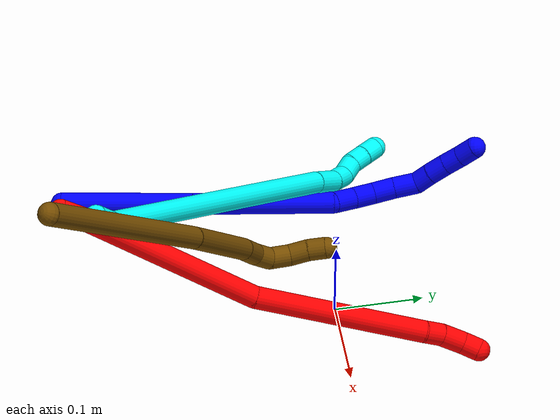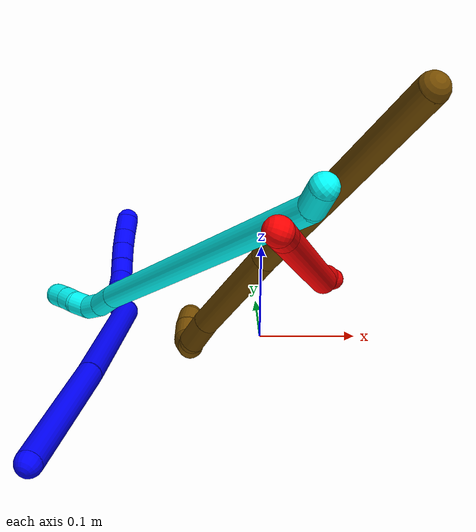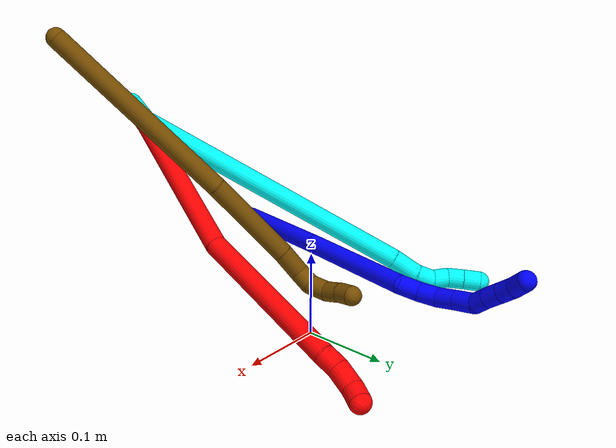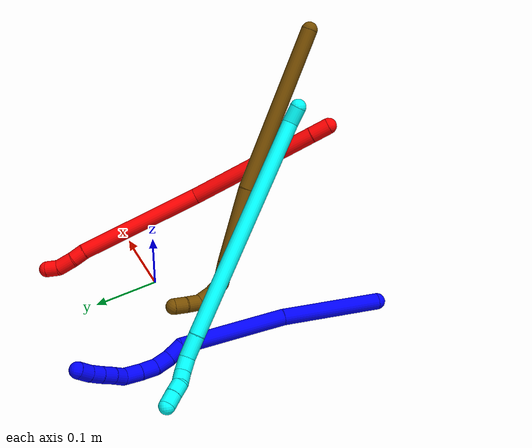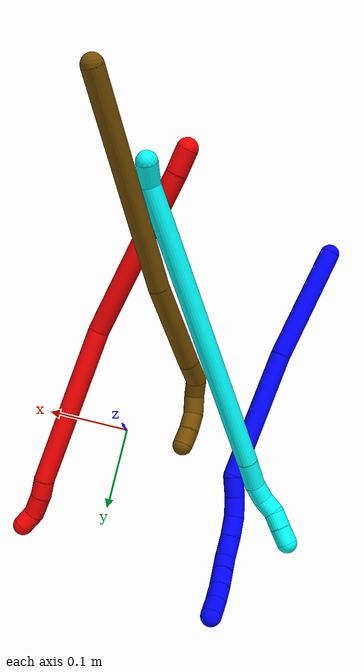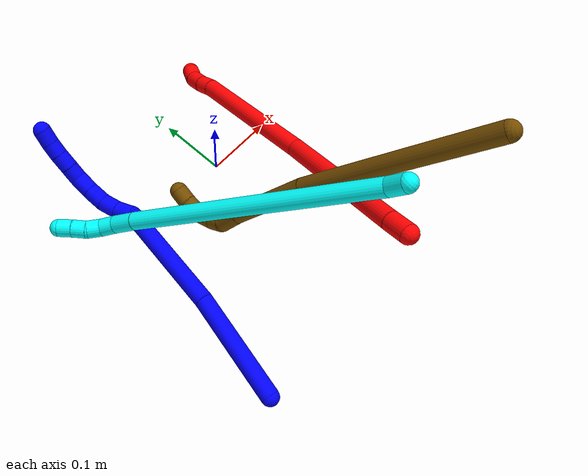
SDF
<sdf version="1.7">
 <world name="default">
  <model name="1">
   <static>0</static>
   <link name="1">
    <collision name="collision-cylinder-e_1_1_4">
     <pose>-0.004392 0.025445 -0.071295 -2.79879 -0.057948 0.331778</pose>
     <geometry><cylinder><radius>0.0125</radius><length>0.151654</length></cylinder></geometry>
     <surface>
      <friction><ode><mu>1.16</mu><mu2>1.16</mu2><slip1>0</slip1><slip2>0</slip2></ode></friction>
      <contact><ode><kp>1e+06</kp><kd>1</kd><max_vel>0</max_vel><min_depth>0.001</min_depth></ode></contact>
     </surface>
    </collision>
    <visual name="visual-cylinder-e_1_1_4">
     <pose>-0.004392 0.025445 -0.071295 -2.79879 -0.057948 0.331778</pose>
     <geometry><cylinder><radius>0.0125</radius><length>0.151654</length></cylinder></geometry>
     <material><ambient>0 0 1 1</ambient></material>
    </visual>
    <collision name="collision-cylinder-e_2_4_5">
     <pose>-0.011287 0.085624 -0.215788 -2.69853 -0.030896 0.136972</pose>
     <geometry><cylinder><radius>0.0125</radius><length>0.162118</length></cylinder></geometry>
     <surface>
      <friction><ode><mu>1.16</mu><mu2>1.16</mu2><slip1>0</slip1><slip2>0</slip2></ode></friction>
      <contact><ode><kp>1e+06</kp><kd>1</kd><max_vel>0</max_vel><min_depth>0.001</min_depth></ode></contact>
     </surface>
    </collision>
    <visual name="visual-cylinder-e_2_4_5">
     <pose>-0.011287 0.085624 -0.215788 -2.69853 -0.030896 0.136972</pose>
     <geometry><cylinder><radius>0.0125</radius><length>0.162118</length></cylinder></geometry>
     <material><ambient>0 0 1 1</ambient></material>
    </visual>
    <collision name="collision-cylinder-e_3_5_6">
     <pose>-0.010954 0.130009 -0.297068 -2.26803 0.221698 -0.468091</pose>
     <geometry><cylinder><radius>0.0125</radius><length>0.025808</length></cylinder></geometry>
     <surface>
      <friction><ode><mu>1.16</mu><mu2>1.16</mu2><slip1>0</slip1><slip2>0</slip2></ode></friction>
      <contact><ode><kp>1e+06</kp><kd>1</kd><max_vel>0</max_vel><min_depth>0.001</min_depth></ode></contact>
     </surface>
    </collision>
    <visual name="visual-cylinder-e_3_5_6">
     <pose>-0.010954 0.130009 -0.297068 -2.26803 0.221698 -0.468091</pose>
     <geometry><cylinder><radius>0.0125</radius><length>0.025808</length></cylinder></geometry>
     <material><ambient>0 0 1 1</ambient></material>
    </visual>
    <collision name="collision-cylinder-e_4_6_7">
     <pose>-0.005341 0.147247 -0.31463 -2.46657 0.224739 -0.622213</pose>
     <geometry><cylinder><radius>0.0125</radius><length>0.02491</length></cylinder></geometry>
     <surface>
      <friction><ode><mu>1.16</mu><mu2>1.16</mu2><slip1>0</slip1><slip2>0</slip2></ode></friction>
      <contact><ode><kp>1e+06</kp><kd>1</kd><max_vel>0</max_vel><min_depth>0.001</min_depth></ode></contact>
     </surface>
    </collision>
    <visual name="visual-cylinder-e_4_6_7">
     <pose>-0.005341 0.147247 -0.31463 -2.46657 0.224739 -0.622213</pose>
     <geometry><cylinder><radius>0.0125</radius><length>0.02491</length></cylinder></geometry>
     <material><ambient>0 0 1 1</ambient></material>
    </visual>
    <collision name="collision-cylinder-e_5_7_8">
     <pose>9.2e-05 0.159648 -0.335402 -2.7387 0.213161 -0.965146</pose>
     <geometry><cylinder><radius>0.0125</radius><length>0.02512</length></cylinder></geometry>
     <surface>
      <friction><ode><mu>1.16</mu><mu2>1.16</mu2><slip1>0</slip1><slip2>0</slip2></ode></friction>
      <contact><ode><kp>1e+06</kp><kd>1</kd><max_vel>0</max_vel><min_depth>0.001</min_depth></ode></contact>
     </surface>
    </collision>
    <visual name="visual-cylinder-e_5_7_8">
     <pose>9.2e-05 0.159648 -0.335402 -2.7387 0.213161 -0.965146</pose>
     <geometry><cylinder><radius>0.0125</radius><length>0.02512</length></cylinder></geometry>
     <material><ambient>0 0 1 1</ambient></material>
    </visual>
    <collision name="collision-cylinder-e_6_8_9">
     <pose>0.004913 0.169073 -0.359097 -2.78557 0.162071 -0.848026</pose>
     <geometry><cylinder><radius>0.0125</radius><length>0.026816</length></cylinder></geometry>
     <surface>
      <friction><ode><mu>1.16</mu><mu2>1.16</mu2><slip1>0</slip1><slip2>0</slip2></ode></friction>
      <contact><ode><kp>1e+06</kp><kd>1</kd><max_vel>0</max_vel><min_depth>0.001</min_depth></ode></contact>
     </surface>
    </collision>
    <visual name="visual-cylinder-e_6_8_9">
     <pose>0.004913 0.169073 -0.359097 -2.78557 0.162071 -0.848026</pose>
     <geometry><cylinder><radius>0.0125</radius><length>0.026816</length></cylinder></geometry>
     <material><ambient>0 0 1 1</ambient></material>
    </visual>
    <collision name="collision-cylinder-e_7_9_10">
     <pose>0.011442 0.172761 -0.38059 3.04029 0.445739 2.70146</pose>
     <geometry><cylinder><radius>0.0125</radius><length>0.020253</length></cylinder></geometry>
     <surface>
      <friction><ode><mu>1.16</mu><mu2>1.16</mu2><slip1>0</slip1><slip2>0</slip2></ode></friction>
      <contact><ode><kp>1e+06</kp><kd>1</kd><max_vel>0</max_vel><min_depth>0.001</min_depth></ode></contact>
     </surface>
    </collision>
    <visual name="visual-cylinder-e_7_9_10">
     <pose>0.011442 0.172761 -0.38059 3.04029 0.445739 2.70146</pose>
     <geometry><cylinder><radius>0.0125</radius><length>0.020253</length></cylinder></geometry>
     <material><ambient>0 0 1 1</ambient></material>
    </visual>
    <collision name="collision-cylinder-e_8_10_11">
     <pose>0.020238 0.171413 -0.399817 3.09984 0.411719 2.94227</pose>
     <geometry><cylinder><radius>0.0125</radius><length>0.022143</length></cylinder></geometry>
     <surface>
      <friction><ode><mu>1.16</mu><mu2>1.16</mu2><slip1>0</slip1><slip2>0</slip2></ode></friction>
      <contact><ode><kp>1e+06</kp><kd>1</kd><max_vel>0</max_vel><min_depth>0.001</min_depth></ode></contact>
     </surface>
    </collision>
    <visual name="visual-cylinder-e_8_10_11">
     <pose>0.020238 0.171413 -0.399817 3.09984 0.411719 2.94227</pose>
     <geometry><cylinder><radius>0.0125</radius><length>0.022143</length></cylinder></geometry>
     <material><ambient>0 0 1 1</ambient></material>
    </visual>
    <collision name="collision-cylinder-e_9_11_12">
     <pose>0.028309 0.17019 -0.419352 3.05667 0.368345 2.6931</pose>
     <geometry><cylinder><radius>0.0125</radius><length>0.020217</length></cylinder></geometry>
     <surface>
      <friction><ode><mu>1.16</mu><mu2>1.16</mu2><slip1>0</slip1><slip2>0</slip2></ode></friction>
      <contact><ode><kp>1e+06</kp><kd>1</kd><max_vel>0</max_vel><min_depth>0.001</min_depth></ode></contact>
     </surface>
    </collision>
    <visual name="visual-cylinder-e_9_11_12">
     <pose>0.028309 0.17019 -0.419352 3.05667 0.368345 2.6931</pose>
     <geometry><cylinder><radius>0.0125</radius><length>0.020217</length></cylinder></geometry>
     <material><ambient>0 0 1 1</ambient></material>
    </visual>
    <collision name="collision-cylinder-e_10_12_2">
     <pose>0.03566 0.167319 -0.438328 2.92866 0.361967 2.08441</pose>
     <geometry><cylinder><radius>0.0125</radius><length>0.02096</length></cylinder></geometry>
     <surface>
      <friction><ode><mu>1.16</mu><mu2>1.16</mu2><slip1>0</slip1><slip2>0</slip2></ode></friction>
      <contact><ode><kp>1e+06</kp><kd>1</kd><max_vel>0</max_vel><min_depth>0.001</min_depth></ode></contact>
     </surface>
    </collision>
    <visual name="visual-cylinder-e_10_12_2">
     <pose>0.03566 0.167319 -0.438328 2.92866 0.361967 2.08441</pose>
     <geometry><cylinder><radius>0.0125</radius><length>0.02096</length></cylinder></geometry>
     <material><ambient>0 0 1 1</ambient></material>
    </visual>
    <collision name="collision-sphere-2">
     <pose>0.039371 0.165247 -0.447908 0 -0 0</pose>
     <geometry><sphere><radius>0.0125</radius></sphere></geometry>
     <surface>
      <friction><ode><mu>1.16</mu><mu2>1.16</mu2><slip1>0</slip1><slip2>0</slip2></ode></friction>
      <contact><ode><kp>1e+06</kp><kd>1</kd><max_vel>0</max_vel><min_depth>0.001</min_depth></ode></contact>
     </surface>
    </collision>
    <visual name="visual-sphere-2">
     <pose>0.039371 0.165247 -0.447908 0 -0 0</pose>
     <geometry><sphere><radius>0.0125</radius></sphere></geometry>
     <material><ambient>0 0 1 1</ambient></material>
    </visual>
    <collision name="collision-sphere-12">
     <pose>0.031949 0.16939 -0.428748 0 -0 0</pose>
     <geometry><sphere><radius>0.0125</radius></sphere></geometry>
     <surface>
      <friction><ode><mu>1.16</mu><mu2>1.16</mu2><slip1>0</slip1><slip2>0</slip2></ode></friction>
      <contact><ode><kp>1e+06</kp><kd>1</kd><max_vel>0</max_vel><min_depth>0.001</min_depth></ode></contact>
     </surface>
    </collision>
    <visual name="visual-sphere-12">
     <pose>0.031949 0.16939 -0.428748 0 -0 0</pose>
     <geometry><sphere><radius>0.0125</radius></sphere></geometry>
     <material><ambient>0 0 1 1</ambient></material>
    </visual>
    <collision name="collision-sphere-11">
     <pose>0.024669 0.17099 -0.409955 0 -0 0</pose>
     <geometry><sphere><radius>0.0125</radius></sphere></geometry>
     <surface>
      <friction><ode><mu>1.16</mu><mu2>1.16</mu2><slip1>0</slip1><slip2>0</slip2></ode></friction>
      <contact><ode><kp>1e+06</kp><kd>1</kd><max_vel>0</max_vel><min_depth>0.001</min_depth></ode></contact>
     </surface>
    </collision>
    <visual name="visual-sphere-11">
     <pose>0.024669 0.17099 -0.409955 0 -0 0</pose>
     <geometry><sphere><radius>0.0125</radius></sphere></geometry>
     <material><ambient>0 0 1 1</ambient></material>
    </visual>
    <collision name="collision-sphere-10">
     <pose>0.015808 0.171837 -0.38968 0 -0 0</pose>
     <geometry><sphere><radius>0.0125</radius></sphere></geometry>
     <surface>
      <friction><ode><mu>1.16</mu><mu2>1.16</mu2><slip1>0</slip1><slip2>0</slip2></ode></friction>
      <contact><ode><kp>1e+06</kp><kd>1</kd><max_vel>0</max_vel><min_depth>0.001</min_depth></ode></contact>
     </surface>
    </collision>
    <visual name="visual-sphere-10">
     <pose>0.015808 0.171837 -0.38968 0 -0 0</pose>
     <geometry><sphere><radius>0.0125</radius></sphere></geometry>
     <material><ambient>0 0 1 1</ambient></material>
    </visual>
    <collision name="collision-sphere-9">
     <pose>0.007076 0.173685 -0.3715 0 -0 0</pose>
     <geometry><sphere><radius>0.0125</radius></sphere></geometry>
     <surface>
      <friction><ode><mu>1.16</mu><mu2>1.16</mu2><slip1>0</slip1><slip2>0</slip2></ode></friction>
      <contact><ode><kp>1e+06</kp><kd>1</kd><max_vel>0</max_vel><min_depth>0.001</min_depth></ode></contact>
     </surface>
    </collision>
    <visual name="visual-sphere-9">
     <pose>0.007076 0.173685 -0.3715 0 -0 0</pose>
     <geometry><sphere><radius>0.0125</radius></sphere></geometry>
     <material><ambient>0 0 1 1</ambient></material>
    </visual>
    <collision name="collision-sphere-4">
     <pose>-0.008783 0.05089 -0.14259 0 -0 0</pose>
     <geometry><sphere><radius>0.0125</radius></sphere></geometry>
     <surface>
      <friction><ode><mu>1.16</mu><mu2>1.16</mu2><slip1>0</slip1><slip2>0</slip2></ode></friction>
      <contact><ode><kp>1e+06</kp><kd>1</kd><max_vel>0</max_vel><min_depth>0.001</min_depth></ode></contact>
     </surface>
    </collision>
    <visual name="visual-sphere-4">
     <pose>-0.008783 0.05089 -0.14259 0 -0 0</pose>
     <geometry><sphere><radius>0.0125</radius></sphere></geometry>
     <material><ambient>0 0 1 1</ambient></material>
    </visual>
    <collision name="collision-sphere-1">
     <geometry><sphere><radius>0.0125</radius></sphere></geometry>
     <surface>
      <friction><ode><mu>1.16</mu><mu2>1.16</mu2><slip1>0</slip1><slip2>0</slip2></ode></friction>
      <contact><ode><kp>1e+06</kp><kd>1</kd><max_vel>0</max_vel><min_depth>0.001</min_depth></ode></contact>
     </surface>
    </collision>
    <visual name="visual-sphere-1">
     <geometry><sphere><radius>0.0125</radius></sphere></geometry>
     <material><ambient>0 0 1 1</ambient></material>
    </visual>
    <collision name="collision-sphere-8">
     <pose>0.002749 0.164461 -0.346695 0 -0 0</pose>
     <geometry><sphere><radius>0.0125</radius></sphere></geometry>
     <surface>
      <friction><ode><mu>1.16</mu><mu2>1.16</mu2><slip1>0</slip1><slip2>0</slip2></ode></friction>
      <contact><ode><kp>1e+06</kp><kd>1</kd><max_vel>0</max_vel><min_depth>0.001</min_depth></ode></contact>
     </surface>
    </collision>
    <visual name="visual-sphere-8">
     <pose>0.002749 0.164461 -0.346695 0 -0 0</pose>
     <geometry><sphere><radius>0.0125</radius></sphere></geometry>
     <material><ambient>0 0 1 1</ambient></material>
    </visual>
    <collision name="collision-sphere-5">
     <pose>-0.013791 0.120358 -0.288985 0 -0 0</pose>
     <geometry><sphere><radius>0.0125</radius></sphere></geometry>
     <surface>
      <friction><ode><mu>1.16</mu><mu2>1.16</mu2><slip1>0</slip1><slip2>0</slip2></ode></friction>
      <contact><ode><kp>1e+06</kp><kd>1</kd><max_vel>0</max_vel><min_depth>0.001</min_depth></ode></contact>
     </surface>
    </collision>
    <visual name="visual-sphere-5">
     <pose>-0.013791 0.120358 -0.288985 0 -0 0</pose>
     <geometry><sphere><radius>0.0125</radius></sphere></geometry>
     <material><ambient>0 0 1 1</ambient></material>
    </visual>
    <collision name="collision-sphere-6">
     <pose>-0.008116 0.139659 -0.305151 0 -0 0</pose>
     <geometry><sphere><radius>0.0125</radius></sphere></geometry>
     <surface>
      <friction><ode><mu>1.16</mu><mu2>1.16</mu2><slip1>0</slip1><slip2>0</slip2></ode></friction>
      <contact><ode><kp>1e+06</kp><kd>1</kd><max_vel>0</max_vel><min_depth>0.001</min_depth></ode></contact>
     </surface>
    </collision>
    <visual name="visual-sphere-6">
     <pose>-0.008116 0.139659 -0.305151 0 -0 0</pose>
     <geometry><sphere><radius>0.0125</radius></sphere></geometry>
     <material><ambient>0 0 1 1</ambient></material>
    </visual>
    <collision name="collision-sphere-7">
     <pose>-0.002565 0.154834 -0.324109 0 -0 0</pose>
     <geometry><sphere><radius>0.0125</radius></sphere></geometry>
     <surface>
      <friction><ode><mu>1.16</mu><mu2>1.16</mu2><slip1>0</slip1><slip2>0</slip2></ode></friction>
      <contact><ode><kp>1e+06</kp><kd>1</kd><max_vel>0</max_vel><min_depth>0.001</min_depth></ode></contact>
     </surface>
    </collision>
    <visual name="visual-sphere-7">
     <pose>-0.002565 0.154834 -0.324109 0 -0 0</pose>
     <geometry><sphere><radius>0.0125</radius></sphere></geometry>
     <material><ambient>0 0 1 1</ambient></material>
    </visual>
    <inertial>
     <pose>-0.001556 0.0951 -0.227162 0 -0 0</pose>
     <mass>0.5</mass>
     <inertia>
      <ixx>0.000785</ixx>
      <ixy>0</ixy>
      <ixz>0</ixz>
      <iyy>-0.000429</iyy>
      <iyz>0</iyz>
      <izz>-0.00027</izz>
     </inertia>
    </inertial>
   </link>
   <pose>-0.199631 -0.283556 0.011497 -2.02134 -0.601897 3.02966</pose>
  </model>
  <model name="2">
   <static>0</static>
   <link name="2">
    <collision name="collision-cylinder-e_1_1_4">
     <pose>0.000365 0.013297 -0.006179 -2.00579 0.024873 -0.038983</pose>
     <geometry><cylinder><radius>0.0125</radius><length>0.029335</length></cylinder></geometry>
     <surface>
      <friction><ode><mu>1.16</mu><mu2>1.16</mu2><slip1>0</slip1><slip2>0</slip2></ode></friction>
      <contact><ode><kp>1e+06</kp><kd>1</kd><max_vel>0</max_vel><min_depth>0.001</min_depth></ode></contact>
     </surface>
    </collision>
    <visual name="visual-cylinder-e_1_1_4">
     <pose>0.000365 0.013297 -0.006179 -2.00579 0.024873 -0.038983</pose>
     <geometry><cylinder><radius>0.0125</radius><length>0.029335</length></cylinder></geometry>
     <material><ambient>1 0 0 1</ambient></material>
    </visual>
    <collision name="collision-cylinder-e_2_4_5">
     <pose>-0.00108 0.116728 -0.0621 -2.07507 -0.017579 0.029779</pose>
     <geometry><cylinder><radius>0.0125</radius><length>0.205928</length></cylinder></geometry>
     <surface>
      <friction><ode><mu>1.16</mu><mu2>1.16</mu2><slip1>0</slip1><slip2>0</slip2></ode></friction>
      <contact><ode><kp>1e+06</kp><kd>1</kd><max_vel>0</max_vel><min_depth>0.001</min_depth></ode></contact>
     </surface>
    </collision>
    <visual name="visual-cylinder-e_2_4_5">
     <pose>-0.00108 0.116728 -0.0621 -2.07507 -0.017579 0.029779</pose>
     <geometry><cylinder><radius>0.0125</radius><length>0.205928</length></cylinder></geometry>
     <material><ambient>1 0 0 1</ambient></material>
    </visual>
    <collision name="collision-cylinder-e_3_5_6">
     <pose>0.009135 0.299089 -0.143398 -1.90047 0.122748 -0.171528</pose>
     <geometry><cylinder><radius>0.0125</radius><length>0.196432</length></cylinder></geometry>
     <surface>
      <friction><ode><mu>1.16</mu><mu2>1.16</mu2><slip1>0</slip1><slip2>0</slip2></ode></friction>
      <contact><ode><kp>1e+06</kp><kd>1</kd><max_vel>0</max_vel><min_depth>0.001</min_depth></ode></contact>
     </surface>
    </collision>
    <visual name="visual-cylinder-e_3_5_6">
     <pose>0.009135 0.299089 -0.143398 -1.90047 0.122748 -0.171528</pose>
     <geometry><cylinder><radius>0.0125</radius><length>0.196432</length></cylinder></geometry>
     <material><ambient>1 0 0 1</ambient></material>
    </visual>
    <collision name="collision-cylinder-e_4_6_7">
     <pose>0.02107 0.401604 -0.177452 -1.80888 -0.008561 0.010887</pose>
     <geometry><cylinder><radius>0.0125</radius><length>0.021175</length></cylinder></geometry>
     <surface>
      <friction><ode><mu>1.16</mu><mu2>1.16</mu2><slip1>0</slip1><slip2>0</slip2></ode></friction>
      <contact><ode><kp>1e+06</kp><kd>1</kd><max_vel>0</max_vel><min_depth>0.001</min_depth></ode></contact>
     </surface>
    </collision>
    <visual name="visual-cylinder-e_4_6_7">
     <pose>0.02107 0.401604 -0.177452 -1.80888 -0.008561 0.010887</pose>
     <geometry><cylinder><radius>0.0125</radius><length>0.021175</length></cylinder></geometry>
     <material><ambient>1 0 0 1</ambient></material>
    </visual>
    <collision name="collision-cylinder-e_5_7_8">
     <pose>0.02074 0.424263 -0.18551 -1.99333 -0.017643 0.027275</pose>
     <geometry><cylinder><radius>0.0125</radius><length>0.02713</length></cylinder></geometry>
     <surface>
      <friction><ode><mu>1.16</mu><mu2>1.16</mu2><slip1>0</slip1><slip2>0</slip2></ode></friction>
      <contact><ode><kp>1e+06</kp><kd>1</kd><max_vel>0</max_vel><min_depth>0.001</min_depth></ode></contact>
     </surface>
    </collision>
    <visual name="visual-cylinder-e_5_7_8">
     <pose>0.02074 0.424263 -0.18551 -1.99333 -0.017643 0.027275</pose>
     <geometry><cylinder><radius>0.0125</radius><length>0.02713</length></cylinder></geometry>
     <material><ambient>1 0 0 1</ambient></material>
    </visual>
    <collision name="collision-cylinder-e_6_8_2">
     <pose>0.023317 0.444133 -0.197057 -2.24432 0.285489 -0.580286</pose>
     <geometry><cylinder><radius>0.0125</radius><length>0.020001</length></cylinder></geometry>
     <surface>
      <friction><ode><mu>1.16</mu><mu2>1.16</mu2><slip1>0</slip1><slip2>0</slip2></ode></friction>
      <contact><ode><kp>1e+06</kp><kd>1</kd><max_vel>0</max_vel><min_depth>0.001</min_depth></ode></contact>
     </surface>
    </collision>
    <visual name="visual-cylinder-e_6_8_2">
     <pose>0.023317 0.444133 -0.197057 -2.24432 0.285489 -0.580286</pose>
     <geometry><cylinder><radius>0.0125</radius><length>0.020001</length></cylinder></geometry>
     <material><ambient>1 0 0 1</ambient></material>
    </visual>
    <collision name="collision-sphere-2">
     <pose>0.026134 0.451634 -0.203043 0 -0 0</pose>
     <geometry><sphere><radius>0.0125</radius></sphere></geometry>
     <surface>
      <friction><ode><mu>1.16</mu><mu2>1.16</mu2><slip1>0</slip1><slip2>0</slip2></ode></friction>
      <contact><ode><kp>1e+06</kp><kd>1</kd><max_vel>0</max_vel><min_depth>0.001</min_depth></ode></contact>
     </surface>
    </collision>
    <visual name="visual-sphere-2">
     <pose>0.026134 0.451634 -0.203043 0 -0 0</pose>
     <geometry><sphere><radius>0.0125</radius></sphere></geometry>
     <material><ambient>1 0 0 1</ambient></material>
    </visual>
    <collision name="collision-sphere-4">
     <pose>0.00073 0.026594 -0.012358 0 -0 0</pose>
     <geometry><sphere><radius>0.0125</radius></sphere></geometry>
     <surface>
      <friction><ode><mu>1.16</mu><mu2>1.16</mu2><slip1>0</slip1><slip2>0</slip2></ode></friction>
      <contact><ode><kp>1e+06</kp><kd>1</kd><max_vel>0</max_vel><min_depth>0.001</min_depth></ode></contact>
     </surface>
    </collision>
    <visual name="visual-sphere-4">
     <pose>0.00073 0.026594 -0.012358 0 -0 0</pose>
     <geometry><sphere><radius>0.0125</radius></sphere></geometry>
     <material><ambient>1 0 0 1</ambient></material>
    </visual>
    <collision name="collision-sphere-1">
     <geometry><sphere><radius>0.0125</radius></sphere></geometry>
     <surface>
      <friction><ode><mu>1.16</mu><mu2>1.16</mu2><slip1>0</slip1><slip2>0</slip2></ode></friction>
      <contact><ode><kp>1e+06</kp><kd>1</kd><max_vel>0</max_vel><min_depth>0.001</min_depth></ode></contact>
     </surface>
    </collision>
    <visual name="visual-sphere-1">
     <geometry><sphere><radius>0.0125</radius></sphere></geometry>
     <material><ambient>1 0 0 1</ambient></material>
    </visual>
    <collision name="collision-sphere-8">
     <pose>0.020501 0.436633 -0.191072 0 -0 0</pose>
     <geometry><sphere><radius>0.0125</radius></sphere></geometry>
     <surface>
      <friction><ode><mu>1.16</mu><mu2>1.16</mu2><slip1>0</slip1><slip2>0</slip2></ode></friction>
      <contact><ode><kp>1e+06</kp><kd>1</kd><max_vel>0</max_vel><min_depth>0.001</min_depth></ode></contact>
     </surface>
    </collision>
    <visual name="visual-sphere-8">
     <pose>0.020501 0.436633 -0.191072 0 -0 0</pose>
     <geometry><sphere><radius>0.0125</radius></sphere></geometry>
     <material><ambient>1 0 0 1</ambient></material>
    </visual>
    <collision name="collision-sphere-5">
     <pose>-0.00289 0.206861 -0.111842 0 -0 0</pose>
     <geometry><sphere><radius>0.0125</radius></sphere></geometry>
     <surface>
      <friction><ode><mu>1.16</mu><mu2>1.16</mu2><slip1>0</slip1><slip2>0</slip2></ode></friction>
      <contact><ode><kp>1e+06</kp><kd>1</kd><max_vel>0</max_vel><min_depth>0.001</min_depth></ode></contact>
     </surface>
    </collision>
    <visual name="visual-sphere-5">
     <pose>-0.00289 0.206861 -0.111842 0 -0 0</pose>
     <geometry><sphere><radius>0.0125</radius></sphere></geometry>
     <material><ambient>1 0 0 1</ambient></material>
    </visual>
    <collision name="collision-sphere-6">
     <pose>0.021161 0.391316 -0.174955 0 -0 0</pose>
     <geometry><sphere><radius>0.0125</radius></sphere></geometry>
     <surface>
      <friction><ode><mu>1.16</mu><mu2>1.16</mu2><slip1>0</slip1><slip2>0</slip2></ode></friction>
      <contact><ode><kp>1e+06</kp><kd>1</kd><max_vel>0</max_vel><min_depth>0.001</min_depth></ode></contact>
     </surface>
    </collision>
    <visual name="visual-sphere-6">
     <pose>0.021161 0.391316 -0.174955 0 -0 0</pose>
     <geometry><sphere><radius>0.0125</radius></sphere></geometry>
     <material><ambient>1 0 0 1</ambient></material>
    </visual>
    <collision name="collision-sphere-7">
     <pose>0.020979 0.411893 -0.179948 0 -0 0</pose>
     <geometry><sphere><radius>0.0125</radius></sphere></geometry>
     <surface>
      <friction><ode><mu>1.16</mu><mu2>1.16</mu2><slip1>0</slip1><slip2>0</slip2></ode></friction>
      <contact><ode><kp>1e+06</kp><kd>1</kd><max_vel>0</max_vel><min_depth>0.001</min_depth></ode></contact>
     </surface>
    </collision>
    <visual name="visual-sphere-7">
     <pose>0.020979 0.411893 -0.179948 0 -0 0</pose>
     <geometry><sphere><radius>0.0125</radius></sphere></geometry>
     <material><ambient>1 0 0 1</ambient></material>
    </visual>
    <inertial>
     <pose>0.006116 0.224151 -0.107738 0 -0 0</pose>
     <mass>0.5</mass>
     <inertia>
      <ixx>0.001284</ixx>
      <ixy>0</ixy>
      <ixz>0</ixz>
      <iyy>-0.000602</iyy>
      <iyz>0</iyz>
      <izz>-0.001334</izz>
     </inertia>
    </inertial>
   </link>
   <pose>-0.004604 -0.298173 0.211907 -0.703494 -1.0483 0.86229</pose>
  </model>
  <model name="3">
   <static>0</static>
   <link name="3">
    <collision name="collision-cylinder-e_1_1_4">
     <pose>0.000468 0.008038 -0.011132 -2.5162 0.034078 -0.105318</pose>
     <geometry><cylinder><radius>0.0125</radius><length>0.027477</length></cylinder></geometry>
     <surface>
      <friction><ode><mu>1.16</mu><mu2>1.16</mu2><slip1>0</slip1><slip2>0</slip2></ode></friction>
      <contact><ode><kp>1e+06</kp><kd>1</kd><max_vel>0</max_vel><min_depth>0.001</min_depth></ode></contact>
     </surface>
    </collision>
    <visual name="visual-cylinder-e_1_1_4">
     <pose>0.000468 0.008038 -0.011132 -2.5162 0.034078 -0.105318</pose>
     <geometry><cylinder><radius>0.0125</radius><length>0.027477</length></cylinder></geometry>
     <material><ambient>0.003922 1 0.996078 1</ambient></material>
    </visual>
    <collision name="collision-cylinder-e_2_4_5">
     <pose>-0.056517 0.093385 -0.170554 -2.66102 -0.330923 1.19645</pose>
     <geometry><cylinder><radius>0.0125</radius><length>0.353652</length></cylinder></geometry>
     <surface>
      <friction><ode><mu>1.16</mu><mu2>1.16</mu2><slip1>0</slip1><slip2>0</slip2></ode></friction>
      <contact><ode><kp>1e+06</kp><kd>1</kd><max_vel>0</max_vel><min_depth>0.001</min_depth></ode></contact>
     </surface>
    </collision>
    <visual name="visual-cylinder-e_2_4_5">
     <pose>-0.056517 0.093385 -0.170554 -2.66102 -0.330923 1.19645</pose>
     <geometry><cylinder><radius>0.0125</radius><length>0.353652</length></cylinder></geometry>
     <material><ambient>0.003922 1 0.996078 1</ambient></material>
    </visual>
    <collision name="collision-cylinder-e_3_5_6">
     <pose>-0.118314 0.178731 -0.333772 -2.64768 -0.250775 0.927282</pose>
     <geometry><cylinder><radius>0.0125</radius><length>0.035004</length></cylinder></geometry>
     <surface>
      <friction><ode><mu>1.16</mu><mu2>1.16</mu2><slip1>0</slip1><slip2>0</slip2></ode></friction>
      <contact><ode><kp>1e+06</kp><kd>1</kd><max_vel>0</max_vel><min_depth>0.001</min_depth></ode></contact>
     </surface>
    </collision>
    <visual name="visual-cylinder-e_3_5_6">
     <pose>-0.118314 0.178731 -0.333772 -2.64768 -0.250775 0.927282</pose>
     <geometry><cylinder><radius>0.0125</radius><length>0.035004</length></cylinder></geometry>
     <material><ambient>0.003922 1 0.996078 1</ambient></material>
    </visual>
    <collision name="collision-cylinder-e_4_6_7">
     <pose>-0.1274 0.190007 -0.358628 -2.82625 -0.426344 1.87458</pose>
     <geometry><cylinder><radius>0.0125</radius><length>0.022937</length></cylinder></geometry>
     <surface>
      <friction><ode><mu>1.16</mu><mu2>1.16</mu2><slip1>0</slip1><slip2>0</slip2></ode></friction>
      <contact><ode><kp>1e+06</kp><kd>1</kd><max_vel>0</max_vel><min_depth>0.001</min_depth></ode></contact>
     </surface>
    </collision>
    <visual name="visual-cylinder-e_4_6_7">
     <pose>-0.1274 0.190007 -0.358628 -2.82625 -0.426344 1.87458</pose>
     <geometry><cylinder><radius>0.0125</radius><length>0.022937</length></cylinder></geometry>
     <material><ambient>0.003922 1 0.996078 1</ambient></material>
    </visual>
    <collision name="collision-cylinder-e_5_7_8">
     <pose>-0.139692 0.193399 -0.375291 -3.11881 -0.842097 3.09073</pose>
     <geometry><cylinder><radius>0.0125</radius><length>0.020238</length></cylinder></geometry>
     <surface>
      <friction><ode><mu>1.16</mu><mu2>1.16</mu2><slip1>0</slip1><slip2>0</slip2></ode></friction>
      <contact><ode><kp>1e+06</kp><kd>1</kd><max_vel>0</max_vel><min_depth>0.001</min_depth></ode></contact>
     </surface>
    </collision>
    <visual name="visual-cylinder-e_5_7_8">
     <pose>-0.139692 0.193399 -0.375291 -3.11881 -0.842097 3.09073</pose>
     <geometry><cylinder><radius>0.0125</radius><length>0.020238</length></cylinder></geometry>
     <material><ambient>0.003922 1 0.996078 1</ambient></material>
    </visual>
    <collision name="collision-cylinder-e_6_8_9">
     <pose>-0.154228 0.196891 -0.388378 -2.65765 -0.772108 2.05016</pose>
     <geometry><cylinder><radius>0.0125</radius><length>0.020028</length></cylinder></geometry>
     <surface>
      <friction><ode><mu>1.16</mu><mu2>1.16</mu2><slip1>0</slip1><slip2>0</slip2></ode></friction>
      <contact><ode><kp>1e+06</kp><kd>1</kd><max_vel>0</max_vel><min_depth>0.001</min_depth></ode></contact>
     </surface>
    </collision>
    <visual name="visual-cylinder-e_6_8_9">
     <pose>-0.154228 0.196891 -0.388378 -2.65765 -0.772108 2.05016</pose>
     <geometry><cylinder><radius>0.0125</radius><length>0.020028</length></cylinder></geometry>
     <material><ambient>0.003922 1 0.996078 1</ambient></material>
    </visual>
    <collision name="collision-cylinder-e_7_9_2">
     <pose>-0.168106 0.203561 -0.401667 -2.69386 -0.730309 2.06729</pose>
     <geometry><cylinder><radius>0.0125</radius><length>0.020664</length></cylinder></geometry>
     <surface>
      <friction><ode><mu>1.16</mu><mu2>1.16</mu2><slip1>0</slip1><slip2>0</slip2></ode></friction>
      <contact><ode><kp>1e+06</kp><kd>1</kd><max_vel>0</max_vel><min_depth>0.001</min_depth></ode></contact>
     </surface>
    </collision>
    <visual name="visual-cylinder-e_7_9_2">
     <pose>-0.168106 0.203561 -0.401667 -2.69386 -0.730309 2.06729</pose>
     <geometry><cylinder><radius>0.0125</radius><length>0.020664</length></cylinder></geometry>
     <material><ambient>0.003922 1 0.996078 1</ambient></material>
    </visual>
    <collision name="collision-sphere-2">
     <pose>-0.174998 0.206893 -0.408605 0 -0 0</pose>
     <geometry><sphere><radius>0.0125</radius></sphere></geometry>
     <surface>
      <friction><ode><mu>1.16</mu><mu2>1.16</mu2><slip1>0</slip1><slip2>0</slip2></ode></friction>
      <contact><ode><kp>1e+06</kp><kd>1</kd><max_vel>0</max_vel><min_depth>0.001</min_depth></ode></contact>
     </surface>
    </collision>
    <visual name="visual-sphere-2">
     <pose>-0.174998 0.206893 -0.408605 0 -0 0</pose>
     <geometry><sphere><radius>0.0125</radius></sphere></geometry>
     <material><ambient>0.003922 1 0.996078 1</ambient></material>
    </visual>
    <collision name="collision-sphere-9">
     <pose>-0.161214 0.200229 -0.394729 0 -0 0</pose>
     <geometry><sphere><radius>0.0125</radius></sphere></geometry>
     <surface>
      <friction><ode><mu>1.16</mu><mu2>1.16</mu2><slip1>0</slip1><slip2>0</slip2></ode></friction>
      <contact><ode><kp>1e+06</kp><kd>1</kd><max_vel>0</max_vel><min_depth>0.001</min_depth></ode></contact>
     </surface>
    </collision>
    <visual name="visual-sphere-9">
     <pose>-0.161214 0.200229 -0.394729 0 -0 0</pose>
     <geometry><sphere><radius>0.0125</radius></sphere></geometry>
     <material><ambient>0.003922 1 0.996078 1</ambient></material>
    </visual>
    <collision name="collision-sphere-4">
     <pose>0.000936 0.016076 -0.022264 0 -0 0</pose>
     <geometry><sphere><radius>0.0125</radius></sphere></geometry>
     <surface>
      <friction><ode><mu>1.16</mu><mu2>1.16</mu2><slip1>0</slip1><slip2>0</slip2></ode></friction>
      <contact><ode><kp>1e+06</kp><kd>1</kd><max_vel>0</max_vel><min_depth>0.001</min_depth></ode></contact>
     </surface>
    </collision>
    <visual name="visual-sphere-4">
     <pose>0.000936 0.016076 -0.022264 0 -0 0</pose>
     <geometry><sphere><radius>0.0125</radius></sphere></geometry>
     <material><ambient>0.003922 1 0.996078 1</ambient></material>
    </visual>
    <collision name="collision-sphere-1">
     <geometry><sphere><radius>0.0125</radius></sphere></geometry>
     <surface>
      <friction><ode><mu>1.16</mu><mu2>1.16</mu2><slip1>0</slip1><slip2>0</slip2></ode></friction>
      <contact><ode><kp>1e+06</kp><kd>1</kd><max_vel>0</max_vel><min_depth>0.001</min_depth></ode></contact>
     </surface>
    </collision>
    <visual name="visual-sphere-1">
     <geometry><sphere><radius>0.0125</radius></sphere></geometry>
     <material><ambient>0.003922 1 0.996078 1</ambient></material>
    </visual>
    <collision name="collision-sphere-8">
     <pose>-0.147241 0.193553 -0.382028 0 -0 0</pose>
     <geometry><sphere><radius>0.0125</radius></sphere></geometry>
     <surface>
      <friction><ode><mu>1.16</mu><mu2>1.16</mu2><slip1>0</slip1><slip2>0</slip2></ode></friction>
      <contact><ode><kp>1e+06</kp><kd>1</kd><max_vel>0</max_vel><min_depth>0.001</min_depth></ode></contact>
     </surface>
    </collision>
    <visual name="visual-sphere-8">
     <pose>-0.147241 0.193553 -0.382028 0 -0 0</pose>
     <geometry><sphere><radius>0.0125</radius></sphere></geometry>
     <material><ambient>0.003922 1 0.996078 1</ambient></material>
    </visual>
    <collision name="collision-sphere-5">
     <pose>-0.113971 0.170693 -0.318844 0 -0 0</pose>
     <geometry><sphere><radius>0.0125</radius></sphere></geometry>
     <surface>
      <friction><ode><mu>1.16</mu><mu2>1.16</mu2><slip1>0</slip1><slip2>0</slip2></ode></friction>
      <contact><ode><kp>1e+06</kp><kd>1</kd><max_vel>0</max_vel><min_depth>0.001</min_depth></ode></contact>
     </surface>
    </collision>
    <visual name="visual-sphere-5">
     <pose>-0.113971 0.170693 -0.318844 0 -0 0</pose>
     <geometry><sphere><radius>0.0125</radius></sphere></geometry>
     <material><ambient>0.003922 1 0.996078 1</ambient></material>
    </visual>
    <collision name="collision-sphere-6">
     <pose>-0.122658 0.186769 -0.3487 0 -0 0</pose>
     <geometry><sphere><radius>0.0125</radius></sphere></geometry>
     <surface>
      <friction><ode><mu>1.16</mu><mu2>1.16</mu2><slip1>0</slip1><slip2>0</slip2></ode></friction>
      <contact><ode><kp>1e+06</kp><kd>1</kd><max_vel>0</max_vel><min_depth>0.001</min_depth></ode></contact>
     </surface>
    </collision>
    <visual name="visual-sphere-6">
     <pose>-0.122658 0.186769 -0.3487 0 -0 0</pose>
     <geometry><sphere><radius>0.0125</radius></sphere></geometry>
     <material><ambient>0.003922 1 0.996078 1</ambient></material>
    </visual>
    <collision name="collision-sphere-7">
     <pose>-0.132143 0.193246 -0.368555 0 -0 0</pose>
     <geometry><sphere><radius>0.0125</radius></sphere></geometry>
     <surface>
      <friction><ode><mu>1.16</mu><mu2>1.16</mu2><slip1>0</slip1><slip2>0</slip2></ode></friction>
      <contact><ode><kp>1e+06</kp><kd>1</kd><max_vel>0</max_vel><min_depth>0.001</min_depth></ode></contact>
     </surface>
    </collision>
    <visual name="visual-sphere-7">
     <pose>-0.132143 0.193246 -0.368555 0 -0 0</pose>
     <geometry><sphere><radius>0.0125</radius></sphere></geometry>
     <material><ambient>0.003922 1 0.996078 1</ambient></material>
    </visual>
    <inertial>
     <pose>-0.072856 0.11185 -0.20841 0 -0 0</pose>
     <mass>0.5</mass>
     <inertia>
      <ixx>0.004533</ixx>
      <ixy>0</ixy>
      <ixz>0</ixz>
      <iyy>0.002598</iyy>
      <iyz>0</iyz>
      <izz>-0.000448</izz>
     </inertia>
    </inertial>
   </link>
   <pose>0.031527 -0.263914 0.235697 -0.455015 0.733936 -0.923978</pose>
  </model>
  <model name="12">
   <static>0</static>
   <link name="12">
    <collision name="collision-cylinder-e_1_1_4">
     <pose>-0.023243 0.005419 -0.127551 -3.09913 -0.18009 2.67962</pose>
     <geometry><cylinder><radius>0.0125</radius><length>0.259529</length></cylinder></geometry>
     <surface>
      <friction><ode><mu>1.16</mu><mu2>1.16</mu2><slip1>0</slip1><slip2>0</slip2></ode></friction>
      <contact><ode><kp>1e+06</kp><kd>1</kd><max_vel>0</max_vel><min_depth>0.001</min_depth></ode></contact>
     </surface>
    </collision>
    <visual name="visual-cylinder-e_1_1_4">
     <pose>-0.023243 0.005419 -0.127551 -3.09913 -0.18009 2.67962</pose>
     <geometry><cylinder><radius>0.0125</radius><length>0.259529</length></cylinder></geometry>
     <material><ambient>0.466667 0.301961 0 1</ambient></material>
    </visual>
    <collision name="collision-cylinder-e_2_4_5">
     <pose>-0.062317 0.010108 -0.311635 3.12867 -0.273008 -3.04755</pose>
     <geometry><cylinder><radius>0.0125</radius><length>0.117426</length></cylinder></geometry>
     <surface>
      <friction><ode><mu>1.16</mu><mu2>1.16</mu2><slip1>0</slip1><slip2>0</slip2></ode></friction>
      <contact><ode><kp>1e+06</kp><kd>1</kd><max_vel>0</max_vel><min_depth>0.001</min_depth></ode></contact>
     </surface>
    </collision>
    <visual name="visual-cylinder-e_2_4_5">
     <pose>-0.062317 0.010108 -0.311635 3.12867 -0.273008 -3.04755</pose>
     <geometry><cylinder><radius>0.0125</radius><length>0.117426</length></cylinder></geometry>
     <material><ambient>0.466667 0.301961 0 1</ambient></material>
    </visual>
    <collision name="collision-cylinder-e_3_5_6">
     <pose>-0.083456 0.007678 -0.384297 3.03659 -0.316338 -2.50507</pose>
     <geometry><cylinder><radius>0.0125</radius><length>0.034128</length></cylinder></geometry>
     <surface>
      <friction><ode><mu>1.16</mu><mu2>1.16</mu2><slip1>0</slip1><slip2>0</slip2></ode></friction>
      <contact><ode><kp>1e+06</kp><kd>1</kd><max_vel>0</max_vel><min_depth>0.001</min_depth></ode></contact>
     </surface>
    </collision>
    <visual name="visual-cylinder-e_3_5_6">
     <pose>-0.083456 0.007678 -0.384297 3.03659 -0.316338 -2.50507</pose>
     <geometry><cylinder><radius>0.0125</radius><length>0.034128</length></cylinder></geometry>
     <material><ambient>0.466667 0.301961 0 1</ambient></material>
    </visual>
    <collision name="collision-cylinder-e_4_6_7">
     <pose>-0.086755 0.006205 -0.411014 -3.12016 0.187536 -2.9147</pose>
     <geometry><cylinder><radius>0.0125</radius><length>0.021561</length></cylinder></geometry>
     <surface>
      <friction><ode><mu>1.16</mu><mu2>1.16</mu2><slip1>0</slip1><slip2>0</slip2></ode></friction>
      <contact><ode><kp>1e+06</kp><kd>1</kd><max_vel>0</max_vel><min_depth>0.001</min_depth></ode></contact>
     </surface>
    </collision>
    <visual name="visual-cylinder-e_4_6_7">
     <pose>-0.086755 0.006205 -0.411014 -3.12016 0.187536 -2.9147</pose>
     <geometry><cylinder><radius>0.0125</radius><length>0.021561</length></cylinder></geometry>
     <material><ambient>0.466667 0.301961 0 1</ambient></material>
    </visual>
    <collision name="collision-cylinder-e_5_7_8">
     <pose>-0.08078 0.011948 -0.431707 -2.64189 0.331633 -1.16091</pose>
     <geometry><cylinder><radius>0.0125</radius><length>0.024352</length></cylinder></geometry>
     <surface>
      <friction><ode><mu>1.16</mu><mu2>1.16</mu2><slip1>0</slip1><slip2>0</slip2></ode></friction>
      <contact><ode><kp>1e+06</kp><kd>1</kd><max_vel>0</max_vel><min_depth>0.001</min_depth></ode></contact>
     </surface>
    </collision>
    <visual name="visual-cylinder-e_5_7_8">
     <pose>-0.08078 0.011948 -0.431707 -2.64189 0.331633 -1.16091</pose>
     <geometry><cylinder><radius>0.0125</radius><length>0.024352</length></cylinder></geometry>
     <material><ambient>0.466667 0.301961 0 1</ambient></material>
    </visual>
    <collision name="collision-cylinder-e_6_8_9">
     <pose>-0.069809 0.024489 -0.447523 -2.25343 0.658714 -1.24597</pose>
     <geometry><cylinder><radius>0.0125</radius><length>0.022896</length></cylinder></geometry>
     <surface>
      <friction><ode><mu>1.16</mu><mu2>1.16</mu2><slip1>0</slip1><slip2>0</slip2></ode></friction>
      <contact><ode><kp>1e+06</kp><kd>1</kd><max_vel>0</max_vel><min_depth>0.001</min_depth></ode></contact>
     </surface>
    </collision>
    <visual name="visual-cylinder-e_6_8_9">
     <pose>-0.069809 0.024489 -0.447523 -2.25343 0.658714 -1.24597</pose>
     <geometry><cylinder><radius>0.0125</radius><length>0.022896</length></cylinder></geometry>
     <material><ambient>0.466667 0.301961 0 1</ambient></material>
    </visual>
    <collision name="collision-cylinder-e_7_9_2">
     <pose>-0.05594 0.036543 -0.458592 -2.38771 0.751119 -1.56675</pose>
     <geometry><cylinder><radius>0.0125</radius><length>0.020109</length></cylinder></geometry>
     <surface>
      <friction><ode><mu>1.16</mu><mu2>1.16</mu2><slip1>0</slip1><slip2>0</slip2></ode></friction>
      <contact><ode><kp>1e+06</kp><kd>1</kd><max_vel>0</max_vel><min_depth>0.001</min_depth></ode></contact>
     </surface>
    </collision>
    <visual name="visual-cylinder-e_7_9_2">
     <pose>-0.05594 0.036543 -0.458592 -2.38771 0.751119 -1.56675</pose>
     <geometry><cylinder><radius>0.0125</radius><length>0.020109</length></cylinder></geometry>
     <material><ambient>0.466667 0.301961 0 1</ambient></material>
    </visual>
    <collision name="collision-sphere-2">
     <pose>-0.049078 0.041573 -0.463949 0 -0 0</pose>
     <geometry><sphere><radius>0.0125</radius></sphere></geometry>
     <surface>
      <friction><ode><mu>1.16</mu><mu2>1.16</mu2><slip1>0</slip1><slip2>0</slip2></ode></friction>
      <contact><ode><kp>1e+06</kp><kd>1</kd><max_vel>0</max_vel><min_depth>0.001</min_depth></ode></contact>
     </surface>
    </collision>
    <visual name="visual-sphere-2">
     <pose>-0.049078 0.041573 -0.463949 0 -0 0</pose>
     <geometry><sphere><radius>0.0125</radius></sphere></geometry>
     <material><ambient>0.466667 0.301961 0 1</ambient></material>
    </visual>
    <collision name="collision-sphere-9">
     <pose>-0.062802 0.031513 -0.453234 0 -0 0</pose>
     <geometry><sphere><radius>0.0125</radius></sphere></geometry>
     <surface>
      <friction><ode><mu>1.16</mu><mu2>1.16</mu2><slip1>0</slip1><slip2>0</slip2></ode></friction>
      <contact><ode><kp>1e+06</kp><kd>1</kd><max_vel>0</max_vel><min_depth>0.001</min_depth></ode></contact>
     </surface>
    </collision>
    <visual name="visual-sphere-9">
     <pose>-0.062802 0.031513 -0.453234 0 -0 0</pose>
     <geometry><sphere><radius>0.0125</radius></sphere></geometry>
     <material><ambient>0.466667 0.301961 0 1</ambient></material>
    </visual>
    <collision name="collision-sphere-4">
     <pose>-0.046486 0.010839 -0.255102 0 -0 0</pose>
     <geometry><sphere><radius>0.0125</radius></sphere></geometry>
     <surface>
      <friction><ode><mu>1.16</mu><mu2>1.16</mu2><slip1>0</slip1><slip2>0</slip2></ode></friction>
      <contact><ode><kp>1e+06</kp><kd>1</kd><max_vel>0</max_vel><min_depth>0.001</min_depth></ode></contact>
     </surface>
    </collision>
    <visual name="visual-sphere-4">
     <pose>-0.046486 0.010839 -0.255102 0 -0 0</pose>
     <geometry><sphere><radius>0.0125</radius></sphere></geometry>
     <material><ambient>0.466667 0.301961 0 1</ambient></material>
    </visual>
    <collision name="collision-sphere-1">
     <geometry><sphere><radius>0.0125</radius></sphere></geometry>
     <surface>
      <friction><ode><mu>1.16</mu><mu2>1.16</mu2><slip1>0</slip1><slip2>0</slip2></ode></friction>
      <contact><ode><kp>1e+06</kp><kd>1</kd><max_vel>0</max_vel><min_depth>0.001</min_depth></ode></contact>
     </surface>
    </collision>
    <visual name="visual-sphere-1">
     <geometry><sphere><radius>0.0125</radius></sphere></geometry>
     <material><ambient>0.466667 0.301961 0 1</ambient></material>
    </visual>
    <collision name="collision-sphere-8">
     <pose>-0.076816 0.017464 -0.441812 0 -0 0</pose>
     <geometry><sphere><radius>0.0125</radius></sphere></geometry>
     <surface>
      <friction><ode><mu>1.16</mu><mu2>1.16</mu2><slip1>0</slip1><slip2>0</slip2></ode></friction>
      <contact><ode><kp>1e+06</kp><kd>1</kd><max_vel>0</max_vel><min_depth>0.001</min_depth></ode></contact>
     </surface>
    </collision>
    <visual name="visual-sphere-8">
     <pose>-0.076816 0.017464 -0.441812 0 -0 0</pose>
     <geometry><sphere><radius>0.0125</radius></sphere></geometry>
     <material><ambient>0.466667 0.301961 0 1</ambient></material>
    </visual>
    <collision name="collision-sphere-5">
     <pose>-0.078148 0.009377 -0.368169 0 -0 0</pose>
     <geometry><sphere><radius>0.0125</radius></sphere></geometry>
     <surface>
      <friction><ode><mu>1.16</mu><mu2>1.16</mu2><slip1>0</slip1><slip2>0</slip2></ode></friction>
      <contact><ode><kp>1e+06</kp><kd>1</kd><max_vel>0</max_vel><min_depth>0.001</min_depth></ode></contact>
     </surface>
    </collision>
    <visual name="visual-sphere-5">
     <pose>-0.078148 0.009377 -0.368169 0 -0 0</pose>
     <geometry><sphere><radius>0.0125</radius></sphere></geometry>
     <material><ambient>0.466667 0.301961 0 1</ambient></material>
    </visual>
    <collision name="collision-sphere-6">
     <pose>-0.088764 0.005978 -0.400425 0 -0 0</pose>
     <geometry><sphere><radius>0.0125</radius></sphere></geometry>
     <surface>
      <friction><ode><mu>1.16</mu><mu2>1.16</mu2><slip1>0</slip1><slip2>0</slip2></ode></friction>
      <contact><ode><kp>1e+06</kp><kd>1</kd><max_vel>0</max_vel><min_depth>0.001</min_depth></ode></contact>
     </surface>
    </collision>
    <visual name="visual-sphere-6">
     <pose>-0.088764 0.005978 -0.400425 0 -0 0</pose>
     <geometry><sphere><radius>0.0125</radius></sphere></geometry>
     <material><ambient>0.466667 0.301961 0 1</ambient></material>
    </visual>
    <collision name="collision-sphere-7">
     <pose>-0.084745 0.006432 -0.421603 0 -0 0</pose>
     <geometry><sphere><radius>0.0125</radius></sphere></geometry>
     <surface>
      <friction><ode><mu>1.16</mu><mu2>1.16</mu2><slip1>0</slip1><slip2>0</slip2></ode></friction>
      <contact><ode><kp>1e+06</kp><kd>1</kd><max_vel>0</max_vel><min_depth>0.001</min_depth></ode></contact>
     </surface>
    </collision>
    <visual name="visual-sphere-7">
     <pose>-0.084745 0.006432 -0.421603 0 -0 0</pose>
     <geometry><sphere><radius>0.0125</radius></sphere></geometry>
     <material><ambient>0.466667 0.301961 0 1</ambient></material>
    </visual>
    <inertial>
     <pose>-0.045518 0.009151 -0.24331 0 -0 0</pose>
     <mass>0.5</mass>
     <inertia><ixx>-0.00081</ixx><ixy>0</ixy><ixz>0</ixz><iyy>0.002088</iyy><iyz>0</iyz><izz>0.0002</izz></inertia>
    </inertial>
   </link>
   <pose>0.096563 -0.316202 0.319191 0.793903 -0.278938 0.584218</pose>
  </model>
 </world>
</sdf>
